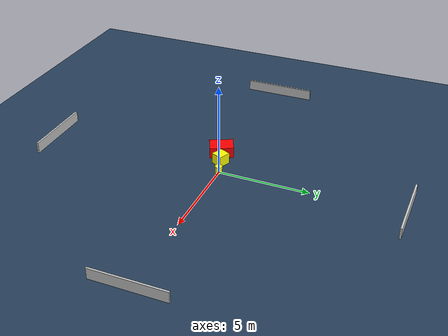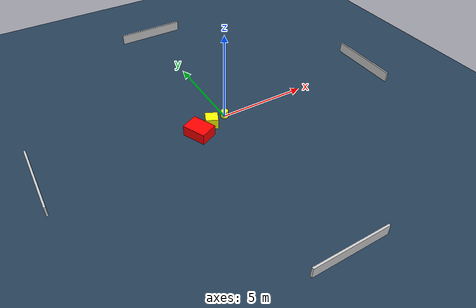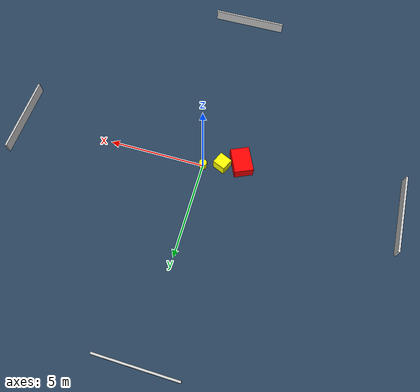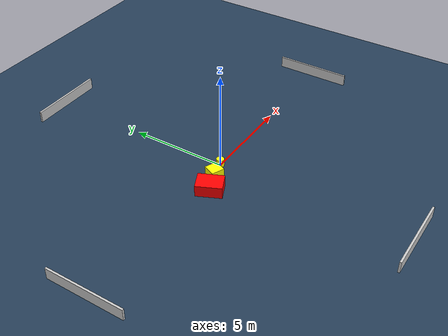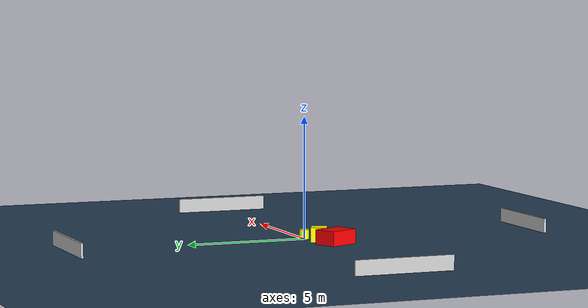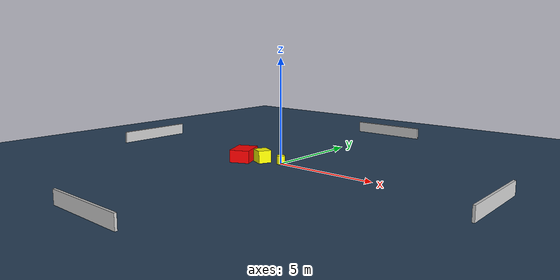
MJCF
<?xml version="1.0" ?>
<mujoco model="generated_environment">
  <option timestep="0.01" integrator="RK4" cone="elliptic"/>
  <default>
    <geom density="1"/>
  </default>
  <asset>
    <texture builtin="gradient" height="3072" name="skybox" rgb1="0.3 0.5 0.7" rgb2="0 0 0" type="skybox" width="512"/>
    <texture builtin="checker" height="300" name="groundplane" rgb1="0.2 0.3 0.4" rgb2="0.1 0.2 0.3" type="2d" width="300"/>
    <material name="groundplane" reflectance="0.2" texrepeat="5 5" texture="groundplane"/>
  </asset>
  <worldbody>
    <light dir="0 0 -1" directional="true" pos="0 0 1.5"/>
    <geom condim="3" friction="0.5 0.005 0.001" material="groundplane" name="floor" pos="0 0 0" size="0 0 0.05" type="plane"/>
    <body name="walls">
      <geom name="wall_1" condim="4" pos="-10.0 0.0 0.3" rgba="0.800000011920929 0.800000011920929 0.800000011920929 1.0" size="0.05 2.0 0.3" type="box"/>
      <geom name="wall_2" condim="4" pos="10.0 0.0 0.3" rgba="0.800000011920929 0.800000011920929 0.800000011920929 1.0" size="0.05 2.0 0.3" type="box"/>
      <geom name="wall_3" condim="4" pos="0.0 -10.0 0.3" rgba="0.800000011920929 0.800000011920929 0.800000011920929 1.0" size="2.0 0.05 0.3" type="box"/>
      <geom name="wall_4" condim="4" pos="0.0 10.0 0.3" rgba="0.800000011920929 0.800000011920929 0.800000011920929 1.0" size="2.0 0.05 0.3" type="box"/>
    </body>
    <body name="robot">
      <joint name="joint_x" type="slide" pos="0 0 0" axis="1 0 0"/>
      <joint name="joint_y" type="slide" pos="0 0 0" axis="0 1 0"/>
      <geom name="robot" type="cylinder" pos="0.0 0.0 0.2" size="0.2 0.2 0.0" mass="5.0" friction="1.0 0.005 0.0001" condim="4" rgba="1.0 1.0 0.0 1.0"/>
    </body>
    <body name="obstacle_1_movable">
      <geom name="obstacle_1_movable" condim="4" pos="-0.9469359661377991 -0.27479005506375076 0.3" euler="0 0 156.08419367847065" friction="0.0 0.005 0.001" rgba="1.0 1.0 0.0 1.0" size="0.3371148986259246 0.32215706425226376 0.3" type="box" mass="0.1"/>
      <joint type="free"/>
    </body>
    <body name="obstacle_2_static">
      <geom name="obstacle_2_static" condim="4" pos="-1.871996763280512 -0.6184971503055514 0.3" euler="0 0 24.599656737899423" friction="0.0 0.005 0.001" rgba="1.0 0.0 0.0 1.0" size="0.4831350777507368 0.6552817097165547 0.3" type="box"/>
    </body>
  </worldbody>
  <actuator>
    <motor name="actuator_x" joint="joint_x" gear="1" ctrlrange="-1 1"/>
    <motor name="actuator_y" joint="joint_y" gear="1" ctrlrange="-1 1"/>
  </actuator>
</mujoco>
